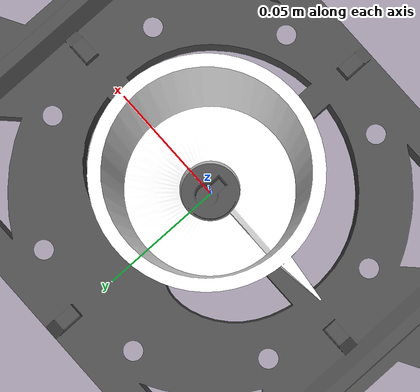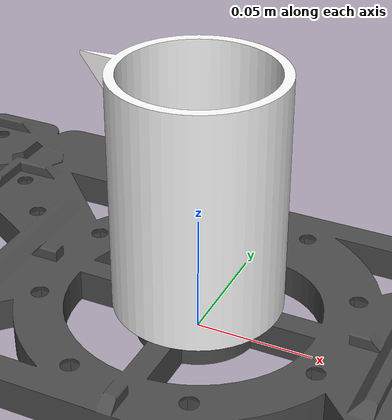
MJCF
<mujoco model="G6_Cylinder_Large">

  <asset>
    <material name="object_material" rgba="1 1 1 1" shininess="0.3"/>

    <mesh name="g1234567_base_plate_visual" file="g1234567_base_plate_visual.stl" scale="1 1 1"/>
    <mesh name="g_plate_collision_part1" file="g_plate_collision_part1.stl" scale="1 1 1"/>
    <mesh name="g_plate_collision_part2" file="g_plate_collision_part2.stl" scale="1 1 1"/>
    <mesh name="g_plate_collision_part3" file="g_plate_collision_part3.stl" scale="1 1 1"/>
    <mesh name="g1_rim_part_0" file="g1_rim/part_0.obj" scale="1 1 1"/>
    <mesh name="g1_rim_part_1" file="g1_rim/part_1.obj" scale="1 1 1"/>
    <mesh name="g1_rim_part_2" file="g1_rim/part_2.obj" scale="1 1 1"/>
    <mesh name="g1_rim_part_3" file="g1_rim/part_3.obj" scale="1 1 1"/>
    <mesh name="g1_rim_part_4" file="g1_rim/part_4.obj" scale="1 1 1"/>
    <mesh name="g1_rim_part_5" file="g1_rim/part_5.obj" scale="1 1 1"/>
    <mesh name="g1_rim_part_6" file="g1_rim/part_6.obj" scale="1 1 1"/>
    <mesh name="g1_rim_part_7" file="g1_rim/part_7.obj" scale="1 1 1"/>
    <mesh name="g1_rim_part_8" file="g1_rim/part_8.obj" scale="1 1 1"/>
    <mesh name="g1_rim_part_9" file="g1_rim/part_9.obj" scale="1 1 1"/>
    <mesh name="g1_rim_part_10" file="g1_rim/part_10.obj" scale="1 1 1"/>
    <mesh name="g1_rim_part_11" file="g1_rim/part_11.obj" scale="1 1 1"/>
    <mesh name="g1_rim_part_12" file="g1_rim/part_12.obj" scale="1 1 1"/>
    <mesh name="g1_rim_part_13" file="g1_rim/part_13.obj" scale="1 1 1"/>
    <mesh name="g1_rim_part_14" file="g1_rim/part_14.obj" scale="1 1 1"/>
    <mesh name="g1_rim_part_15" file="g1_rim/part_15.obj" scale="1 1 1"/>
    <mesh name="g1_rim_part_16" file="g1_rim/part_16.obj" scale="1 1 1"/>

    <mesh name="g1_cylinder_visual" file="g1_cylinder_visual.stl" scale="1 1 1"/>
    <mesh name="g1_cylinder_collision_part_0" file="g1_cylinder_collision/part_0.obj" scale="1 1 1"/>
    <mesh name="g1_cylinder_collision_part_1" file="g1_cylinder_collision/part_1.obj" scale="1 1 1"/>
    <mesh name="g1_cylinder_collision_part_2" file="g1_cylinder_collision/part_2.obj" scale="1 1 1"/>
    <mesh name="g1_cylinder_collision_part_3" file="g1_cylinder_collision/part_3.obj" scale="1 1 1"/>
    <mesh name="g1_cylinder_collision_part_4" file="g1_cylinder_collision/part_4.obj" scale="1 1 1"/>
    <mesh name="g1_cylinder_collision_part_5" file="g1_cylinder_collision/part_5.obj" scale="1 1 1"/>
    <mesh name="g1_cylinder_collision_part_6" file="g1_cylinder_collision/part_6.obj" scale="1 1 1"/>
    <mesh name="g1_cylinder_collision_part_7" file="g1_cylinder_collision/part_7.obj" scale="1 1 1"/>
    <mesh name="g1_cylinder_collision_part_8" file="g1_cylinder_collision/part_8.obj" scale="1 1 1"/>
    <mesh name="g1_cylinder_collision_part_9" file="g1_cylinder_collision/part_9.obj" scale="1 1 1"/>
    <mesh name="g1_cylinder_collision_part_10" file="g1_cylinder_collision/part_10.obj" scale="1 1 1"/>
    <mesh name="g1_cylinder_collision_part_11" file="g1_cylinder_collision/part_11.obj" scale="1 1 1"/>
    <mesh name="g1_cylinder_collision_part_12" file="g1_cylinder_collision/part_12.obj" scale="1 1 1"/>
    <mesh name="g1_cylinder_collision_part_13" file="g1_cylinder_collision/part_13.obj" scale="1 1 1"/>
  </asset>

  <default>
    <default class="visual">
      <geom contype="0" conaffinity="0" group="2"/>
    </default>
    <default class="collision">
      <geom group="3"/>
    </default>
  </default>

  <worldbody>
    <body name="base_plate" pos="0 0 0">
      <geom name="g1234567_base_plate_visual" type="mesh" mesh="g1234567_base_plate_visual" rgba="0.3 0.3 0.3 1" mass="0" class="visual"/>
      <geom name="g_plate_collision_part1" type="mesh" mesh="g_plate_collision_part1" class="collision" density="248"/>
      <geom name="g_plate_collision_part2" type="mesh" mesh="g_plate_collision_part2" class="collision" density="248"/>
      <geom name="g_plate_collision_part3" type="mesh" mesh="g_plate_collision_part3" class="collision" density="248"/>
      <geom name="g1_rim_part_0" type="mesh" mesh="g1_rim_part_0" class="collision" density="248"/>
      <geom name="g1_rim_part_1" type="mesh" mesh="g1_rim_part_1" class="collision" density="248"/>
      <geom name="g1_rim_part_2" type="mesh" mesh="g1_rim_part_2" class="collision" density="248"/>
      <geom name="g1_rim_part_3" type="mesh" mesh="g1_rim_part_3" class="collision" density="248"/>
      <geom name="g1_rim_part_4" type="mesh" mesh="g1_rim_part_4" class="collision" density="248"/>
      <geom name="g1_rim_part_5" type="mesh" mesh="g1_rim_part_5" class="collision" density="248"/>
      <geom name="g1_rim_part_6" type="mesh" mesh="g1_rim_part_6" class="collision" density="248"/>
      <geom name="g1_rim_part_7" type="mesh" mesh="g1_rim_part_7" class="collision" density="248"/>
      <geom name="g1_rim_part_8" type="mesh" mesh="g1_rim_part_8" class="collision" density="248"/>
      <geom name="g1_rim_part_9" type="mesh" mesh="g1_rim_part_9" class="collision" density="248"/>
      <geom name="g1_rim_part_10" type="mesh" mesh="g1_rim_part_10" class="collision" density="248"/>
      <geom name="g1_rim_part_11" type="mesh" mesh="g1_rim_part_11" class="collision" density="248"/>
      <geom name="g1_rim_part_12" type="mesh" mesh="g1_rim_part_12" class="collision" density="248"/>
      <geom name="g1_rim_part_13" type="mesh" mesh="g1_rim_part_13" class="collision" density="248"/>
      <geom name="g1_rim_part_14" type="mesh" mesh="g1_rim_part_14" class="collision" density="248"/>
      <geom name="g1_rim_part_15" type="mesh" mesh="g1_rim_part_15" class="collision" density="248"/>
      <geom name="g1_rim_part_16" type="mesh" mesh="g1_rim_part_16" class="collision" density="248"/>

    </body>

    <body name="g1_cylinder" pos="0 0 0">
      <joint name="g1_free_joint" type="free"/>

      <geom name="g1_cylinder_visual" type="mesh" mesh="g1_cylinder_visual" material="object_material" mass="0" class="visual"/>
      <geom name="g1_cylinder_collision_part_0" type="mesh" mesh="g1_cylinder_collision_part_0" class="collision" density="248"/>
      <geom name="g1_cylinder_collision_part_1" type="mesh" mesh="g1_cylinder_collision_part_1" class="collision" density="248"/>
      <geom name="g1_cylinder_collision_part_2" type="mesh" mesh="g1_cylinder_collision_part_2" class="collision" density="248"/>
      <geom name="g1_cylinder_collision_part_3" type="mesh" mesh="g1_cylinder_collision_part_3" class="collision" density="248"/>
      <geom name="g1_cylinder_collision_part_4" type="mesh" mesh="g1_cylinder_collision_part_4" class="collision" density="248"/>
      <geom name="g1_cylinder_collision_part_5" type="mesh" mesh="g1_cylinder_collision_part_5" class="collision" density="248"/>
      <geom name="g1_cylinder_collision_part_6" type="mesh" mesh="g1_cylinder_collision_part_6" class="collision" density="248"/>
      <geom name="g1_cylinder_collision_part_7" type="mesh" mesh="g1_cylinder_collision_part_7" class="collision" density="248"/>
      <geom name="g1_cylinder_collision_part_8" type="mesh" mesh="g1_cylinder_collision_part_8" class="collision" density="248"/>
      <geom name="g1_cylinder_collision_part_9" type="mesh" mesh="g1_cylinder_collision_part_9" class="collision" density="248"/>
      <geom name="g1_cylinder_collision_part_10" type="mesh" mesh="g1_cylinder_collision_part_10" class="collision" density="248"/>
      <geom name="g1_cylinder_collision_part_11" type="mesh" mesh="g1_cylinder_collision_part_11" class="collision" density="248"/>
      <geom name="g1_cylinder_collision_part_12" type="mesh" mesh="g1_cylinder_collision_part_12" class="collision" density="248"/>
      <geom name="g1_cylinder_collision_part_13" type="mesh" mesh="g1_cylinder_collision_part_13" class="collision" density="248"/>
    </body>

  </worldbody>
</mujoco>
